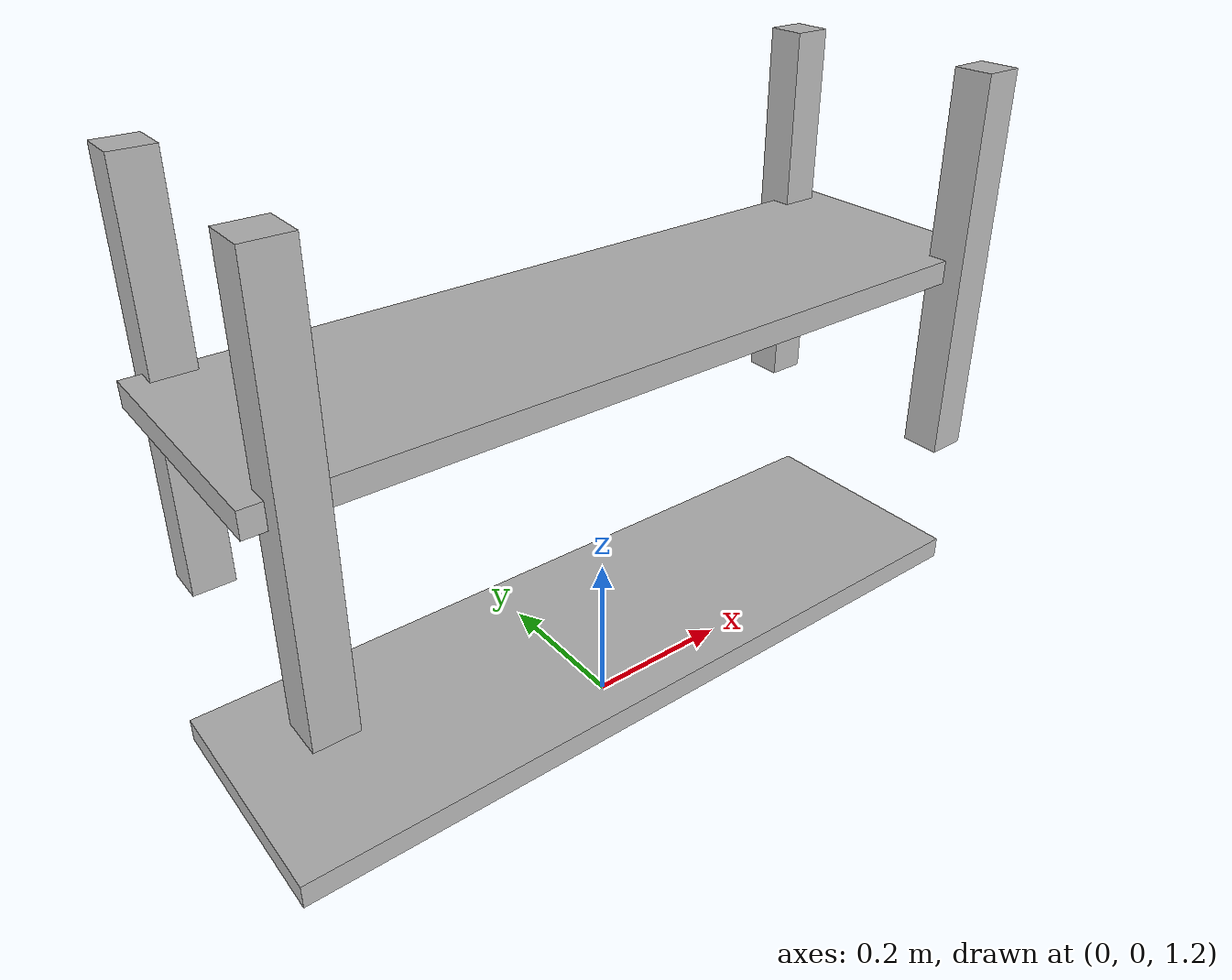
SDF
<?xml version="1.0"?>
<sdf version="1.5">
  <model name="shelf">
    <static>true</static>
    <pose>0 0 1 0 0 0</pose>
    <link name="shelf_link">

      <!-- Montanti -->
      <visual name="leg_fl">
        <pose>-0.45 -0.15 0.75 0 0 0</pose>
        <geometry><box><size>0.05 0.05 0.5</size></box></geometry>
      </visual>
      <visual name="leg_fr">
        <pose>0.45 -0.15 0.75 0 0 0</pose>
        <geometry><box><size>0.05 0.05 0.5</size></box></geometry>
      </visual>
      <visual name="leg_bl">
        <pose>-0.45 0.15 0.75 0 0 0</pose>
        <geometry><box><size>0.05 0.05 0.5</size></box></geometry>
      </visual>
      <visual name="leg_br">
        <pose>0.45 0.15 0.75 0 0 0</pose>
        <geometry><box><size>0.05 0.05 0.5</size></box></geometry>
      </visual>

      <!-- Ripiani -->
      <visual name="shelf_1">
        <pose>0 0 0.3 0 0 0</pose>
        <geometry><box><size>1.0 0.3 0.03</size></box></geometry>
      </visual>
      <visual name="shelf_2">
        <pose>0 0 0.75 0 0 0</pose>
        <geometry><box><size>1.0 0.3 0.03</size></box></geometry>
      </visual>

      <!-- Collisione semplificata -->
      <collision name="collision">
        <geometry><box><size>1.0 0.3 0.5</size></box></geometry>
      </collision>

    </link>
  </model>
</sdf>
